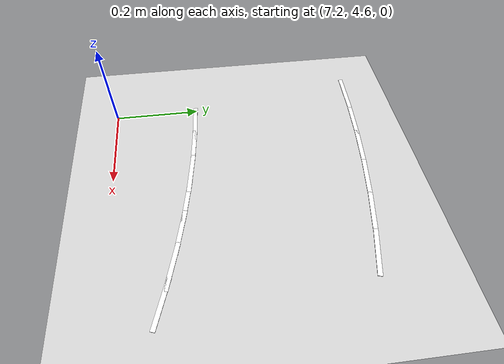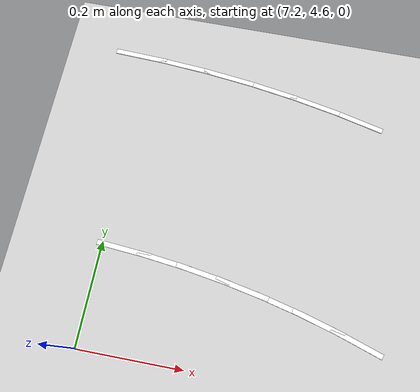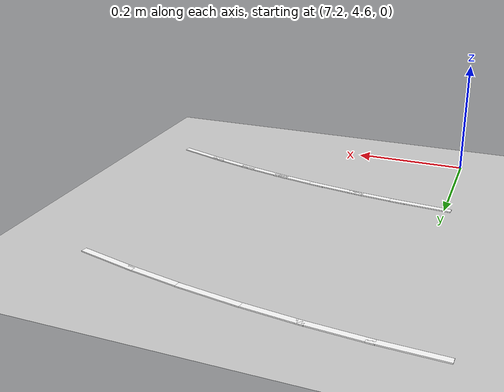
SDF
<sdf version="1.7">
 <world name="default">
  <model name="ground_plane">
   <static>1</static>
   <link name="link">
    <collision name="collision">
     <geometry><plane><normal>0 0 1</normal><size>100 100</size></plane></geometry>
     <surface>
      <contact><collide_bitmask>65535</collide_bitmask></contact>
      <friction><ode><mu>100</mu><mu2>50</mu2></ode></friction>
     </surface>
    </collision>
    <visual name="visual">
     <cast_shadows>0</cast_shadows>
     <geometry><plane><normal>0 0 1</normal><size>100 100</size></plane></geometry>
     <material>
      <script><uri>file://media/materials/scripts/gazebo.material</uri><name>Gazebo/Grey</name></script>
     </material>
    </visual>
   </link>
  </model>
  <model name="lane_line_left_63">
   <static>1</static>
   <link name="link">
    <pose>0 0 -0.004 0 -0 0</pose>
    <visual name="visual">
     <geometry><box><size>0.1078 0.01 0.01</size></box></geometry>
     <material><ambient>1 1 1 1</ambient><diffuse>1 1 1 1</diffuse></material>
    </visual>
    <collision name="collision"><geometry><box><size>0.1078 0.01 0.01</size></box></geometry></collision>
   </link>
   <pose>7.1785 5.19743 0 0 0 -0.040617</pose>
  </model>
  <model name="lane_line_left_64">
   <static>1</static>
   <link name="link">
    <pose>0 0 -0.004 0 -0 0</pose>
    <visual name="visual">
     <geometry><box><size>0.1069 0.01 0.01</size></box></geometry>
     <material><ambient>1 1 1 1</ambient><diffuse>1 1 1 1</diffuse></material>
    </visual>
    <collision name="collision"><geometry><box><size>0.1069 0.01 0.01</size></box></geometry></collision>
   </link>
   <pose>7.27307 5.19184 0 0 0 -0.077595</pose>
  </model>
  <model name="lane_line_right_64">
   <static>1</static>
   <link name="link">
    <pose>0 0 -0.004 0 -0 0</pose>
    <visual name="visual">
     <geometry><box><size>0.1069 0.01 0.01</size></box></geometry>
     <material><ambient>1 1 1 1</ambient><diffuse>1 1 1 1</diffuse></material>
    </visual>
    <collision name="collision"><geometry><box><size>0.1069 0.01 0.01</size></box></geometry></collision>
   </link>
   <pose>7.24207 4.79305 0 0 0 -0.077595</pose>
  </model>
  <model name="lane_line_left_65">
   <static>1</static>
   <link name="link">
    <pose>0 0 -0.004 0 -0 0</pose>
    <visual name="visual">
     <geometry><box><size>0.106 0.01 0.01</size></box></geometry>
     <material><ambient>1 1 1 1</ambient><diffuse>1 1 1 1</diffuse></material>
    </visual>
    <collision name="collision"><geometry><box><size>0.106 0.01 0.01</size></box></geometry></collision>
   </link>
   <pose>7.36662 5.1828 0 0 0 -0.11531</pose>
  </model>
  <model name="lane_line_right_65">
   <static>1</static>
   <link name="link">
    <pose>0 0 -0.004 0 -0 0</pose>
    <visual name="visual">
     <geometry><box><size>0.106 0.01 0.01</size></box></geometry>
     <material><ambient>1 1 1 1</ambient><diffuse>1 1 1 1</diffuse></material>
    </visual>
    <collision name="collision"><geometry><box><size>0.106 0.01 0.01</size></box></geometry></collision>
   </link>
   <pose>7.3206 4.78546 0 0 0 -0.11531</pose>
  </model>
  <model name="lane_line_left_66">
   <static>1</static>
   <link name="link">
    <pose>0 0 -0.004 0 -0 0</pose>
    <visual name="visual">
     <geometry><box><size>0.1053 0.01 0.01</size></box></geometry>
     <material><ambient>1 1 1 1</ambient><diffuse>1 1 1 1</diffuse></material>
    </visual>
    <collision name="collision"><geometry><box><size>0.1053 0.01 0.01</size></box></geometry></collision>
   </link>
   <pose>7.45911 5.1703 0 0 0 -0.153671</pose>
  </model>
  <model name="lane_line_right_66">
   <static>1</static>
   <link name="link">
    <pose>0 0 -0.004 0 -0 0</pose>
    <visual name="visual">
     <geometry><box><size>0.1053 0.01 0.01</size></box></geometry>
     <material><ambient>1 1 1 1</ambient><diffuse>1 1 1 1</diffuse></material>
    </visual>
    <collision name="collision"><geometry><box><size>0.1053 0.01 0.01</size></box></geometry></collision>
   </link>
   <pose>7.39788 4.77501 0 0 0 -0.153671</pose>
  </model>
  <model name="lane_line_left_67">
   <static>1</static>
   <link name="link">
    <pose>0 0 -0.004 0 -0 0</pose>
    <visual name="visual">
     <geometry><box><size>0.1047 0.01 0.01</size></box></geometry>
     <material><ambient>1 1 1 1</ambient><diffuse>1 1 1 1</diffuse></material>
    </visual>
    <collision name="collision"><geometry><box><size>0.1047 0.01 0.01</size></box></geometry></collision>
   </link>
   <pose>7.55047 5.15432 0 0 0 -0.192577</pose>
  </model>
  <model name="lane_line_right_67">
   <static>1</static>
   <link name="link">
    <pose>0 0 -0.004 0 -0 0</pose>
    <visual name="visual">
     <geometry><box><size>0.1047 0.01 0.01</size></box></geometry>
     <material><ambient>1 1 1 1</ambient><diffuse>1 1 1 1</diffuse></material>
    </visual>
    <collision name="collision"><geometry><box><size>0.1047 0.01 0.01</size></box></geometry></collision>
   </link>
   <pose>7.47391 4.76172 0 0 0 -0.192577</pose>
  </model>
  <model name="lane_line_left_68">
   <static>1</static>
   <link name="link">
    <pose>0 0 -0.004 0 -0 0</pose>
    <visual name="visual">
     <geometry><box><size>0.1042 0.01 0.01</size></box></geometry>
     <material><ambient>1 1 1 1</ambient><diffuse>1 1 1 1</diffuse></material>
    </visual>
    <collision name="collision"><geometry><box><size>0.1042 0.01 0.01</size></box></geometry></collision>
   </link>
   <pose>7.64067 5.13489 0 0 0 -0.231918</pose>
  </model>
  <model name="lane_line_right_68">
   <static>1</static>
   <link name="link">
    <pose>0 0 -0.004 0 -0 0</pose>
    <visual name="visual">
     <geometry><box><size>0.1042 0.01 0.01</size></box></geometry>
     <material><ambient>1 1 1 1</ambient><diffuse>1 1 1 1</diffuse></material>
    </visual>
    <collision name="collision"><geometry><box><size>0.1042 0.01 0.01</size></box></geometry></collision>
   </link>
   <pose>7.54873 4.7456 0 0 0 -0.231918</pose>
  </model>
  <model name="lane_line_right_69">
   <static>1</static>
   <link name="link">
    <pose>0 0 -0.004 0 -0 0</pose>
    <visual name="visual">
     <geometry><box><size>0.1038 0.01 0.01</size></box></geometry>
     <material><ambient>1 1 1 1</ambient><diffuse>1 1 1 1</diffuse></material>
    </visual>
    <collision name="collision"><geometry><box><size>0.1038 0.01 0.01</size></box></geometry></collision>
   </link>
   <pose>7.62236 4.72667 0 0 0 -0.271576</pose>
  </model>
  <model name="lane_line_right_70">
   <static>1</static>
   <link name="link">
    <pose>0 0 -0.004 0 -0 0</pose>
    <visual name="visual">
     <geometry><box><size>0.1035 0.01 0.01</size></box></geometry>
     <material><ambient>1 1 1 1</ambient><diffuse>1 1 1 1</diffuse></material>
    </visual>
    <collision name="collision"><geometry><box><size>0.1035 0.01 0.01</size></box></geometry></collision>
   </link>
   <pose>7.69481 4.70493 0 0 0 -0.311429</pose>
  </model>
 </world>
</sdf>
